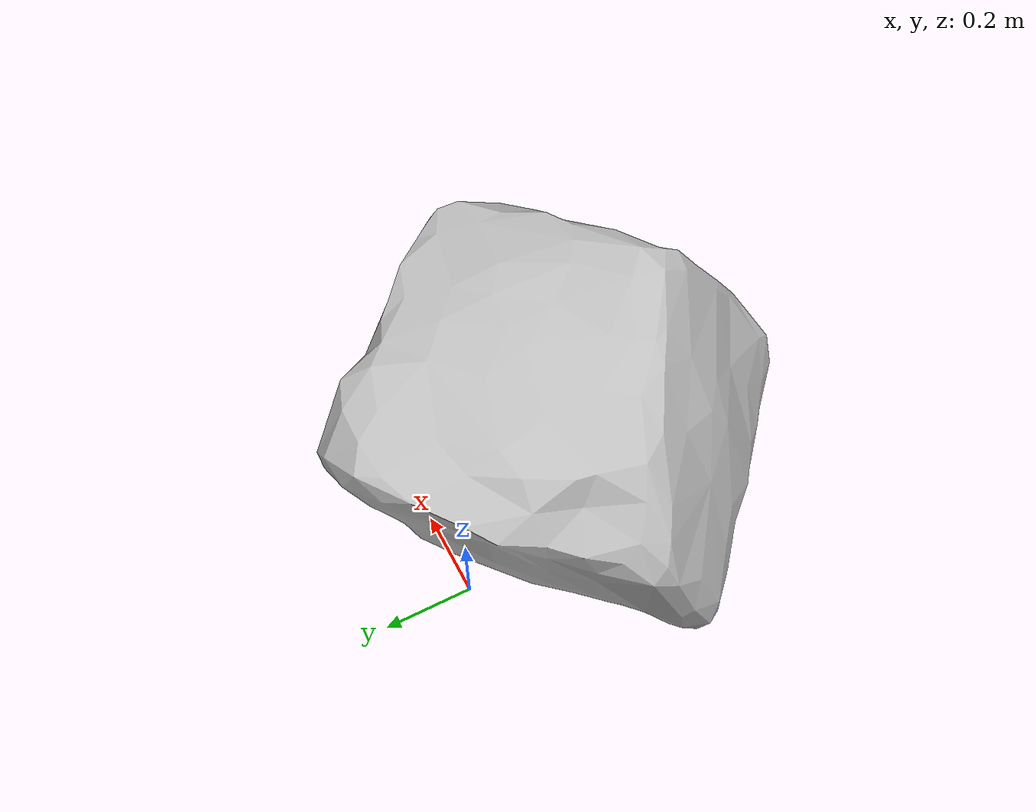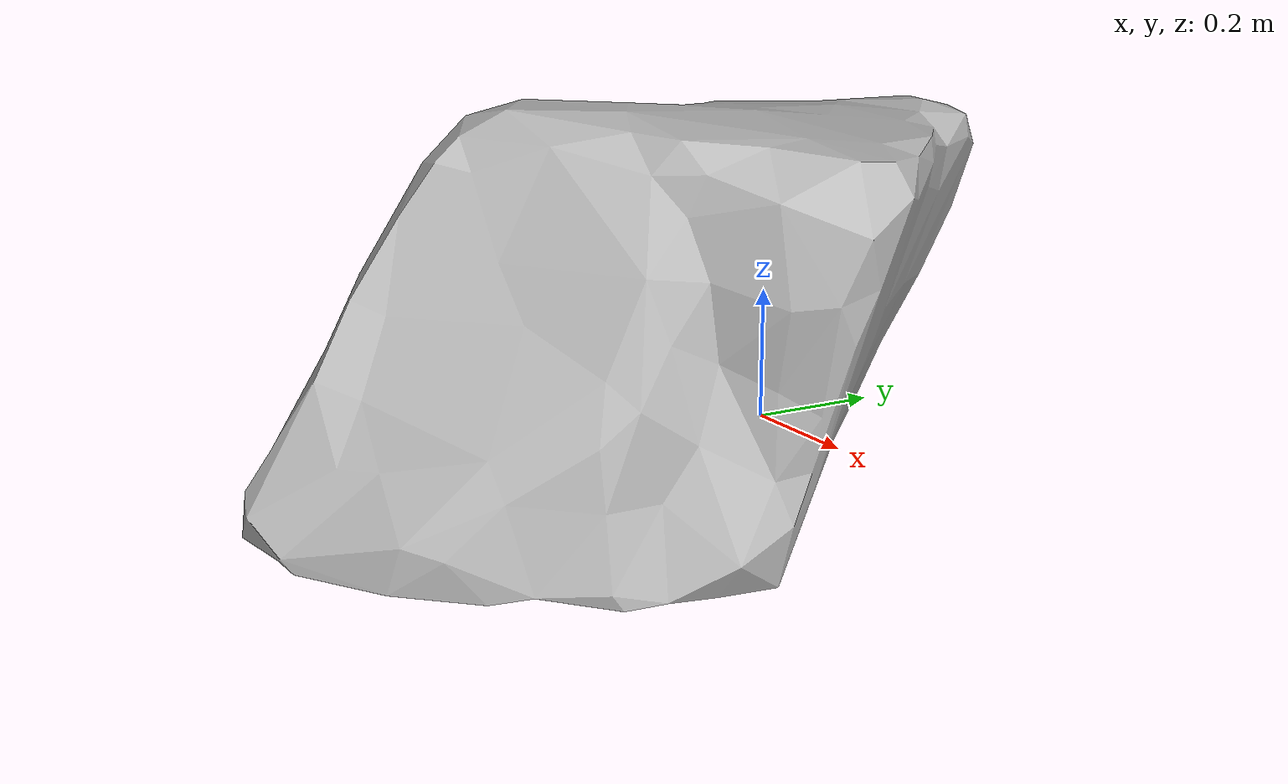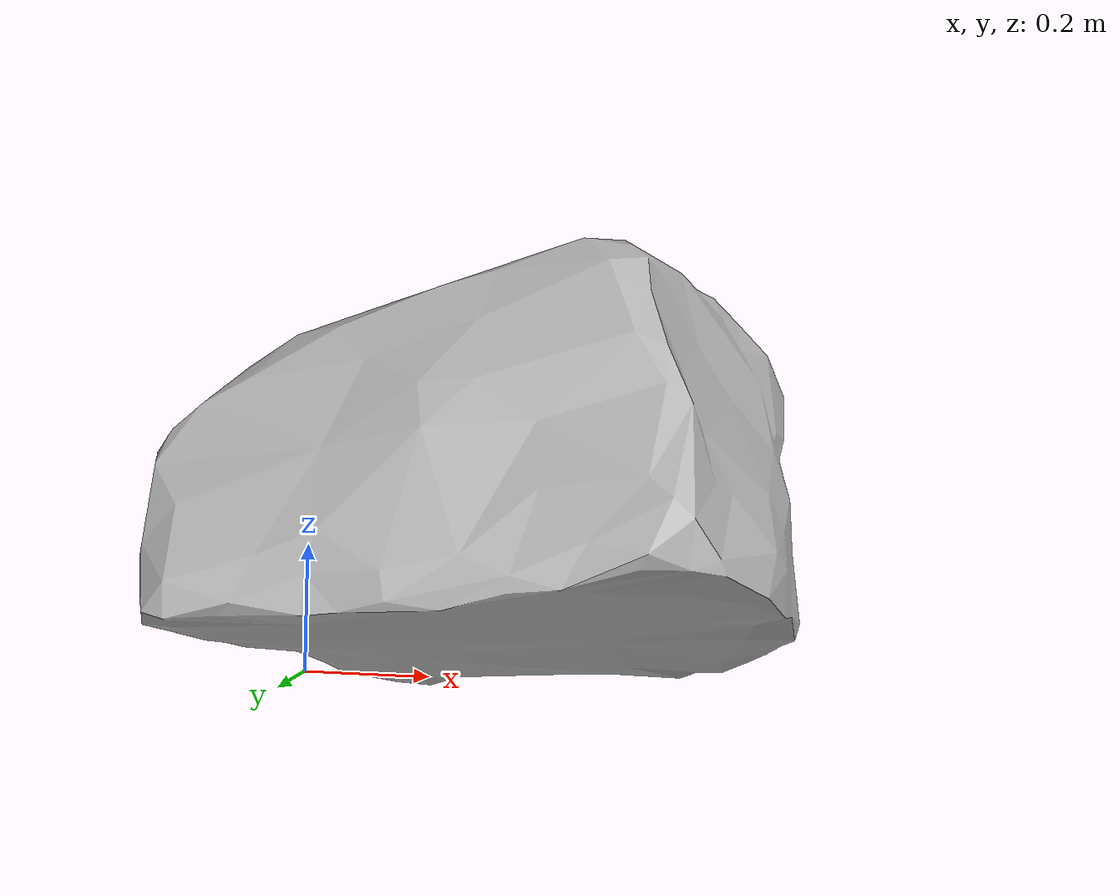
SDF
<?xml version="1.0" ?>
<sdf version="1.5">
    <model name="boulder">
      <pose>0 0 0  0 0 0</pose>
      <static>true</static>
      <link name="body">
        <visual name="visual">
          <geometry>
            <mesh><uri>model://boulder/boulder.dae</uri></mesh>
          </geometry>
        </visual>

        <inertial>
          <mass>0.05</mass>
          <inertia>
            <ixx>4.16666666667e-06</ixx>
            <iyy>5.20833333333e-07</iyy>
            <izz>3.85416666667e-06</izz>
          </inertia>
        </inertial>

        <collision name="collision">
          <geometry>
            <mesh><uri>model://boulder/boulder.dae</uri></mesh>
          </geometry>
        </collision>
      </link>
    </model>
</sdf>

<!-- vim: set et ft=xml fenc=utf-8 ff=unix sts=0 sw=2 ts=2 : -->
